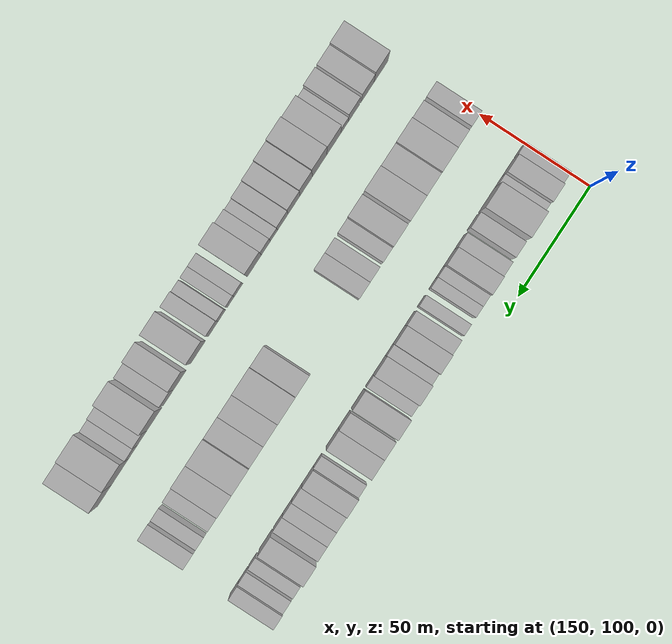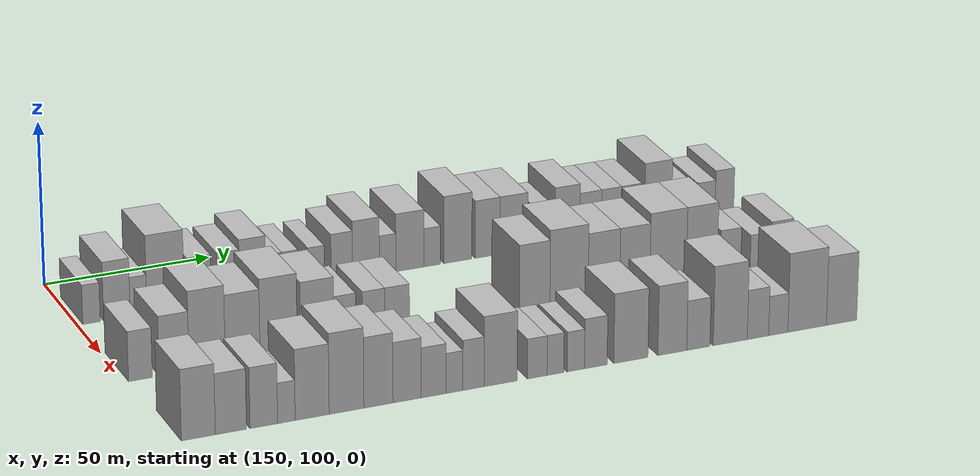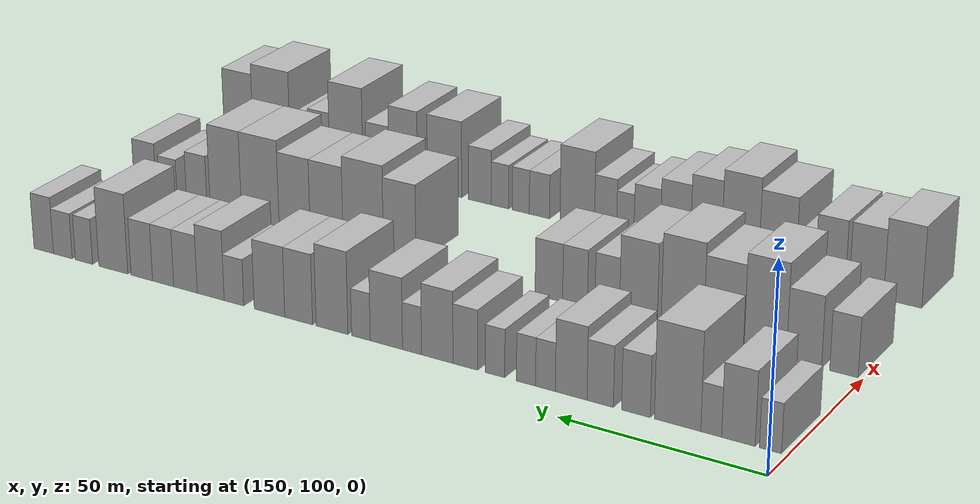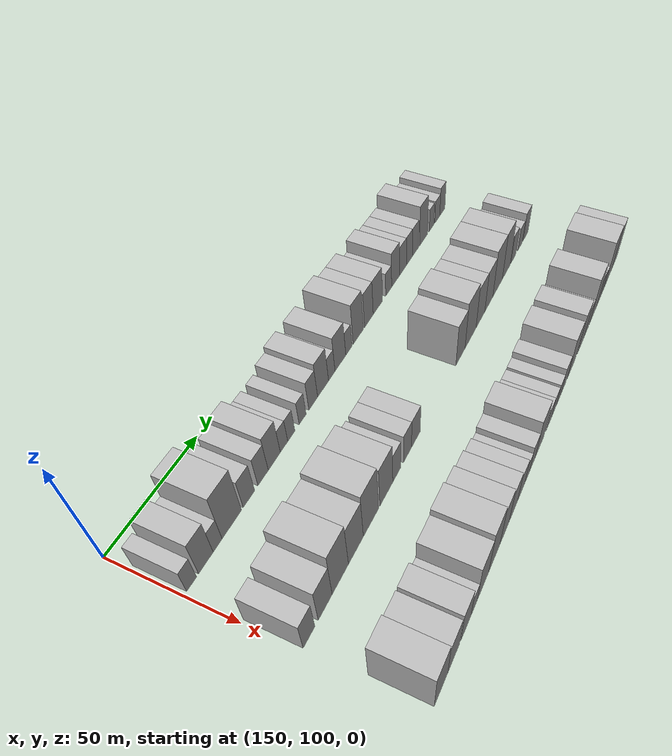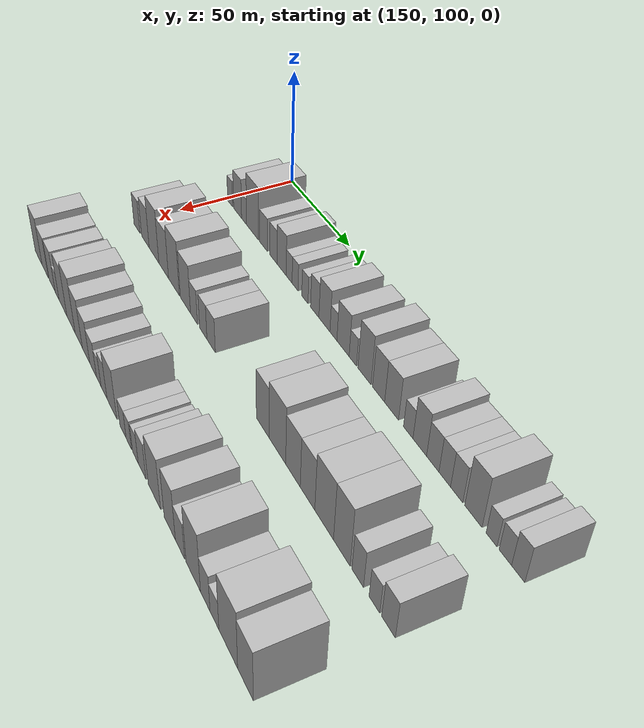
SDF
<sdf version="1.6">
 <world name="default">
  <model name="building_494">
   <static>1</static>
   <pose>170.0000 104.0990 0 0.000000 0.000000 0.000000</pose>
   <link name="link">
    <pose>0 0 6.00 0 0 0</pose>
    <collision name="collision"><geometry><box><size>20.0000 5.1390 12.0000</size></box></geometry></collision>
    <visual name="visual">
     <cast_shadows>0</cast_shadows>
     <geometry><box><size>20.0000 5.1390 12.0000</size></box></geometry>
     <material>
      <script>
       <uri>model://HANNAS_wall/materials/scripts</uri>
       <uri>model://HANNAS_wall/materials/textures</uri>
       <name>vrc/HANNAS_wall</name>
      </script>
     </material>
    </visual>
   </link>
  </model>
  <model name="building_495">
   <static>1</static>
   <pose>170.0000 111.6081 0 0.000000 0.000000 0.000000</pose>
   <link name="link">
    <pose>0 0 9.00 0 0 0</pose>
    <collision name="collision"><geometry><box><size>20.0000 7.8792 18.0000</size></box></geometry></collision>
    <visual name="visual">
     <cast_shadows>0</cast_shadows>
     <geometry><box><size>20.0000 7.8792 18.0000</size></box></geometry>
     <material>
      <script>
       <uri>model://HANNAS_wall/materials/scripts</uri>
       <uri>model://HANNAS_wall/materials/textures</uri>
       <name>vrc/HANNAS_wall</name>
      </script>
     </material>
    </visual>
   </link>
  </model>
  <model name="building_496">
   <static>1</static>
   <pose>170.0000 118.0154 0 0.000000 0.000000 0.000000</pose>
   <link name="link">
    <pose>0 0 6.00 0 0 0</pose>
    <collision name="collision"><geometry><box><size>20.0000 4.9354 12.0000</size></box></geometry></collision>
    <visual name="visual">
     <cast_shadows>0</cast_shadows>
     <geometry><box><size>20.0000 4.9354 12.0000</size></box></geometry>
     <material>
      <script>
       <uri>model://HANNAS_wall/materials/scripts</uri>
       <uri>model://HANNAS_wall/materials/textures</uri>
       <name>vrc/HANNAS_wall</name>
      </script>
     </material>
    </visual>
   </link>
  </model>
  <model name="building_497">
   <static>1</static>
   <pose>170.0000 126.0795 0 0.000000 0.000000 0.000000</pose>
   <link name="link">
    <pose>0 0 12.00 0 0 0</pose>
    <collision name="collision"><geometry><box><size>20.0000 11.1929 24.0000</size></box></geometry></collision>
    <visual name="visual">
     <cast_shadows>0</cast_shadows>
     <geometry><box><size>20.0000 11.1929 24.0000</size></box></geometry>
     <material>
      <script>
       <uri>model://HANNAS_wall/materials/scripts</uri>
       <uri>model://HANNAS_wall/materials/textures</uri>
       <name>vrc/HANNAS_wall</name>
      </script>
     </material>
    </visual>
   </link>
  </model>
  <model name="building_498">
   <static>1</static>
   <pose>170.0000 136.1879 0 0.000000 0.000000 0.000000</pose>
   <link name="link">
    <pose>0 0 7.50 0 0 0</pose>
    <collision name="collision"><geometry><box><size>20.0000 7.0238 15.0000</size></box></geometry></collision>
    <visual name="visual">
     <cast_shadows>0</cast_shadows>
     <geometry><box><size>20.0000 7.0238 15.0000</size></box></geometry>
     <material>
      <script>
       <uri>model://HANNAS_wall/materials/scripts</uri>
       <uri>model://HANNAS_wall/materials/textures</uri>
       <name>vrc/HANNAS_wall</name>
      </script>
     </material>
    </visual>
   </link>
  </model>
  <model name="building_499">
   <static>1</static>
   <pose>170.0000 144.9832 0 0.000000 0.000000 0.000000</pose>
   <link name="link">
    <pose>0 0 7.50 0 0 0</pose>
    <collision name="collision"><geometry><box><size>20.0000 6.5667 15.0000</size></box></geometry></collision>
    <visual name="visual">
     <cast_shadows>0</cast_shadows>
     <geometry><box><size>20.0000 6.5667 15.0000</size></box></geometry>
     <material>
      <script>
       <uri>model://HANNAS_wall/materials/scripts</uri>
       <uri>model://HANNAS_wall/materials/textures</uri>
       <name>vrc/HANNAS_wall</name>
      </script>
     </material>
    </visual>
   </link>
  </model>
  <model name="building_500">
   <static>1</static>
   <pose>170.0000 152.2312 0 0.000000 0.000000 0.000000</pose>
   <link name="link">
    <pose>0 0 9.00 0 0 0</pose>
    <collision name="collision"><geometry><box><size>20.0000 7.9293 18.0000</size></box></geometry></collision>
    <visual name="visual">
     <cast_shadows>0</cast_shadows>
     <geometry><box><size>20.0000 7.9293 18.0000</size></box></geometry>
     <material>
      <script>
       <uri>model://HANNAS_wall/materials/scripts</uri>
       <uri>model://HANNAS_wall/materials/textures</uri>
       <name>vrc/HANNAS_wall</name>
      </script>
     </material>
    </visual>
   </link>
  </model>
  <model name="building_501">
   <static>1</static>
   <pose>170.0000 158.6956 0 0.000000 0.000000 0.000000</pose>
   <link name="link">
    <pose>0 0 6.00 0 0 0</pose>
    <collision name="collision"><geometry><box><size>20.0000 4.9996 12.0000</size></box></geometry></collision>
    <visual name="visual">
     <cast_shadows>0</cast_shadows>
     <geometry><box><size>20.0000 4.9996 12.0000</size></box></geometry>
     <material>
      <script>
       <uri>model://HANNAS_wall/materials/scripts</uri>
       <uri>model://HANNAS_wall/materials/textures</uri>
       <name>vrc/HANNAS_wall</name>
      </script>
     </material>
    </visual>
   </link>
  </model>
  <model name="building_502">
   <static>1</static>
   <pose>170.0000 163.6506 0 0.000000 0.000000 0.000000</pose>
   <link name="link">
    <pose>0 0 6.00 0 0 0</pose>
    <collision name="collision"><geometry><box><size>20.0000 4.9103 12.0000</size></box></geometry></collision>
    <visual name="visual">
     <cast_shadows>0</cast_shadows>
     <geometry><box><size>20.0000 4.9103 12.0000</size></box></geometry>
     <material>
      <script>
       <uri>model://HANNAS_wall/materials/scripts</uri>
       <uri>model://HANNAS_wall/materials/textures</uri>
       <name>vrc/HANNAS_wall</name>
      </script>
     </material>
    </visual>
   </link>
  </model>
  <model name="building_503">
   <static>1</static>
   <pose>170.0000 171.6105 0 0.000000 0.000000 0.000000</pose>
   <link name="link">
    <pose>0 0 6.00 0 0 0</pose>
    <collision name="collision"><geometry><box><size>20.0000 5.0096 12.0000</size></box></geometry></collision>
    <visual name="visual">
     <cast_shadows>0</cast_shadows>
     <geometry><box><size>20.0000 5.0096 12.0000</size></box></geometry>
     <material>
      <script>
       <uri>model://HANNAS_wall/materials/scripts</uri>
       <uri>model://HANNAS_wall/materials/textures</uri>
       <name>vrc/HANNAS_wall</name>
      </script>
     </material>
    </visual>
   </link>
  </model>
  <model name="building_504">
   <static>1</static>
   <pose>170.0000 179.3670 0 0.000000 0.000000 0.000000</pose>
   <link name="link">
    <pose>0 0 7.50 0 0 0</pose>
    <collision name="collision"><geometry><box><size>20.0000 6.5034 15.0000</size></box></geometry></collision>
    <visual name="visual">
     <cast_shadows>0</cast_shadows>
     <geometry><box><size>20.0000 6.5034 15.0000</size></box></geometry>
     <material>
      <script>
       <uri>model://HANNAS_wall/materials/scripts</uri>
       <uri>model://HANNAS_wall/materials/textures</uri>
       <name>vrc/HANNAS_wall</name>
      </script>
     </material>
    </visual>
   </link>
  </model>
  <model name="building_505">
   <static>1</static>
   <pose>170.0000 186.7863 0 0.000000 0.000000 0.000000</pose>
   <link name="link">
    <pose>0 0 9.00 0 0 0</pose>
    <collision name="collision"><geometry><box><size>20.0000 8.3351 18.0000</size></box></geometry></collision>
    <visual name="visual">
     <cast_shadows>0</cast_shadows>
     <geometry><box><size>20.0000 8.3351 18.0000</size></box></geometry>
     <material>
      <script>
       <uri>model://HANNAS_wall/materials/scripts</uri>
       <uri>model://HANNAS_wall/materials/textures</uri>
       <name>vrc/HANNAS_wall</name>
      </script>
     </material>
    </visual>
   </link>
  </model>
  <model name="building_506">
   <static>1</static>
   <pose>170.0000 193.4971 0 0.000000 0.000000 0.000000</pose>
   <link name="link">
    <pose>0 0 6.00 0 0 0</pose>
    <collision name="collision"><geometry><box><size>20.0000 5.0865 12.0000</size></box></geometry></collision>
    <visual name="visual">
     <cast_shadows>0</cast_shadows>
     <geometry><box><size>20.0000 5.0865 12.0000</size></box></geometry>
     <material>
      <script>
       <uri>model://HANNAS_wall/materials/scripts</uri>
       <uri>model://HANNAS_wall/materials/textures</uri>
       <name>vrc/HANNAS_wall</name>
      </script>
     </material>
    </visual>
   </link>
  </model>
  <model name="building_507">
   <static>1</static>
   <pose>170.0000 200.4164 0 0.000000 0.000000 0.000000</pose>
   <link name="link">
    <pose>0 0 9.00 0 0 0</pose>
    <collision name="collision"><geometry><box><size>20.0000 8.7522 18.0000</size></box></geometry></collision>
    <visual name="visual">
     <cast_shadows>0</cast_shadows>
     <geometry><box><size>20.0000 8.7522 18.0000</size></box></geometry>
     <material>
      <script>
       <uri>model://HANNAS_wall/materials/scripts</uri>
       <uri>model://HANNAS_wall/materials/textures</uri>
       <name>vrc/HANNAS_wall</name>
      </script>
     </material>
    </visual>
   </link>
  </model>
  <model name="building_508">
   <static>1</static>
   <pose>170.0000 207.3411 0 0.000000 0.000000 0.000000</pose>
   <link name="link">
    <pose>0 0 6.00 0 0 0</pose>
    <collision name="collision"><geometry><box><size>20.0000 5.0971 12.0000</size></box></geometry></collision>
    <visual name="visual">
     <cast_shadows>0</cast_shadows>
     <geometry><box><size>20.0000 5.0971 12.0000</size></box></geometry>
     <material>
      <script>
       <uri>model://HANNAS_wall/materials/scripts</uri>
       <uri>model://HANNAS_wall/materials/textures</uri>
       <name>vrc/HANNAS_wall</name>
      </script>
     </material>
    </visual>
   </link>
  </model>
  <model name="building_509">
   <static>1</static>
   <pose>170.0000 215.2896 0 0.000000 0.000000 0.000000</pose>
   <link name="link">
    <pose>0 0 10.50 0 0 0</pose>
    <collision name="collision"><geometry><box><size>20.0000 8.8000 21.0000</size></box></geometry></collision>
    <visual name="visual">
     <cast_shadows>0</cast_shadows>
     <geometry><box><size>20.0000 8.8000 21.0000</size></box></geometry>
     <material>
      <script>
       <uri>model://HANNAS_wall/materials/scripts</uri>
       <uri>model://HANNAS_wall/materials/textures</uri>
       <name>vrc/HANNAS_wall</name>
      </script>
     </material>
    </visual>
   </link>
  </model>
  <model name="building_510">
   <static>1</static>
   <pose>170.0000 224.5983 0 0.000000 0.000000 0.000000</pose>
   <link name="link">
    <pose>0 0 9.00 0 0 0</pose>
    <collision name="collision"><geometry><box><size>20.0000 7.8174 18.0000</size></box></geometry></collision>
    <visual name="visual">
     <cast_shadows>0</cast_shadows>
     <geometry><box><size>20.0000 7.8174 18.0000</size></box></geometry>
     <material>
      <script>
       <uri>model://HANNAS_wall/materials/scripts</uri>
       <uri>model://HANNAS_wall/materials/textures</uri>
       <name>vrc/HANNAS_wall</name>
      </script>
     </material>
    </visual>
   </link>
  </model>
  <model name="building_511">
   <static>1</static>
   <pose>170.0000 232.8430 0 0.000000 0.000000 0.000000</pose>
   <link name="link">
    <pose>0 0 9.00 0 0 0</pose>
    <collision name="collision"><geometry><box><size>20.0000 8.6720 18.0000</size></box></geometry></collision>
    <visual name="visual">
     <cast_shadows>0</cast_shadows>
     <geometry><box><size>20.0000 8.6720 18.0000</size></box></geometry>
     <material>
      <script>
       <uri>model://HANNAS_wall/materials/scripts</uri>
       <uri>model://HANNAS_wall/materials/textures</uri>
       <name>vrc/HANNAS_wall</name>
      </script>
     </material>
    </visual>
   </link>
  </model>
  <model name="building_512">
   <static>1</static>
   <pose>170.0000 243.0170 0 0.000000 0.000000 0.000000</pose>
   <link name="link">
    <pose>0 0 6.00 0 0 0</pose>
    <collision name="collision"><geometry><box><size>20.0000 5.6761 12.0000</size></box></geometry></collision>
    <visual name="visual">
     <cast_shadows>0</cast_shadows>
     <geometry><box><size>20.0000 5.6761 12.0000</size></box></geometry>
     <material>
      <script>
       <uri>model://HANNAS_wall/materials/scripts</uri>
       <uri>model://HANNAS_wall/materials/textures</uri>
       <name>vrc/HANNAS_wall</name>
      </script>
     </material>
    </visual>
   </link>
  </model>
  <model name="building_513">
   <static>1</static>
   <pose>170.0000 249.7840 0 0.000000 0.000000 0.000000</pose>
   <link name="link">
    <pose>0 0 9.00 0 0 0</pose>
    <collision name="collision"><geometry><box><size>20.0000 7.8578 18.0000</size></box></geometry></collision>
    <visual name="visual">
     <cast_shadows>0</cast_shadows>
     <geometry><box><size>20.0000 7.8578 18.0000</size></box></geometry>
     <material>
      <script>
       <uri>model://HANNAS_wall/materials/scripts</uri>
       <uri>model://HANNAS_wall/materials/textures</uri>
       <name>vrc/HANNAS_wall</name>
      </script>
     </material>
    </visual>
   </link>
  </model>
  <model name="building_514">
   <static>1</static>
   <pose>170.0000 257.1737 0 0.000000 0.000000 0.000000</pose>
   <link name="link">
    <pose>0 0 7.50 0 0 0</pose>
    <collision name="collision"><geometry><box><size>20.0000 6.9216 15.0000</size></box></geometry></collision>
    <visual name="visual">
     <cast_shadows>0</cast_shadows>
     <geometry><box><size>20.0000 6.9216 15.0000</size></box></geometry>
     <material>
      <script>
       <uri>model://HANNAS_wall/materials/scripts</uri>
       <uri>model://HANNAS_wall/materials/textures</uri>
       <name>vrc/HANNAS_wall</name>
      </script>
     </material>
    </visual>
   </link>
  </model>
  <model name="building_515">
   <static>1</static>
   <pose>170.0000 263.7878 0 0.000000 0.000000 0.000000</pose>
   <link name="link">
    <pose>0 0 7.50 0 0 0</pose>
    <collision name="collision"><geometry><box><size>20.0000 6.3065 15.0000</size></box></geometry></collision>
    <visual name="visual">
     <cast_shadows>0</cast_shadows>
     <geometry><box><size>20.0000 6.3065 15.0000</size></box></geometry>
     <material>
      <script>
       <uri>model://HANNAS_wall/materials/scripts</uri>
       <uri>model://HANNAS_wall/materials/textures</uri>
       <name>vrc/HANNAS_wall</name>
      </script>
     </material>
    </visual>
   </link>
  </model>
  <model name="building_516">
   <static>1</static>
   <pose>170.0000 270.1688 0 0.000000 0.000000 0.000000</pose>
   <link name="link">
    <pose>0 0 7.50 0 0 0</pose>
    <collision name="collision"><geometry><box><size>20.0000 6.4557 15.0000</size></box></geometry></collision>
    <visual name="visual">
     <cast_shadows>0</cast_shadows>
     <geometry><box><size>20.0000 6.4557 15.0000</size></box></geometry>
     <material>
      <script>
       <uri>model://HANNAS_wall/materials/scripts</uri>
       <uri>model://HANNAS_wall/materials/textures</uri>
       <name>vrc/HANNAS_wall</name>
      </script>
     </material>
    </visual>
   </link>
  </model>
  <model name="building_517">
   <static>1</static>
   <pose>170.0000 278.7800 0 0.000000 0.000000 0.000000</pose>
   <link name="link">
    <pose>0 0 10.50 0 0 0</pose>
    <collision name="collision"><geometry><box><size>20.0000 8.7667 21.0000</size></box></geometry></collision>
    <visual name="visual">
     <cast_shadows>0</cast_shadows>
     <geometry><box><size>20.0000 8.7667 21.0000</size></box></geometry>
     <material>
      <script>
       <uri>model://HANNAS_wall/materials/scripts</uri>
       <uri>model://HANNAS_wall/materials/textures</uri>
       <name>vrc/HANNAS_wall</name>
      </script>
     </material>
    </visual>
   </link>
  </model>
  <model name="building_518">
   <static>1</static>
   <pose>170.0000 287.7923 0 0.000000 0.000000 0.000000</pose>
   <link name="link">
    <pose>0 0 6.00 0 0 0</pose>
    <collision name="collision"><geometry><box><size>20.0000 5.2580 12.0000</size></box></geometry></collision>
    <visual name="visual">
     <cast_shadows>0</cast_shadows>
     <geometry><box><size>20.0000 5.2580 12.0000</size></box></geometry>
     <material>
      <script>
       <uri>model://HANNAS_wall/materials/scripts</uri>
       <uri>model://HANNAS_wall/materials/textures</uri>
       <name>vrc/HANNAS_wall</name>
      </script>
     </material>
    </visual>
   </link>
  </model>
  <model name="building_519">
   <static>1</static>
   <pose>170.0000 294.3376 0 0.000000 0.000000 0.000000</pose>
   <link name="link">
    <pose>0 0 6.00 0 0 0</pose>
    <collision name="collision"><geometry><box><size>20.0000 5.8325 12.0000</size></box></geometry></collision>
    <visual name="visual">
     <cast_shadows>0</cast_shadows>
     <geometry><box><size>20.0000 5.8325 12.0000</size></box></geometry>
     <material>
      <script>
       <uri>model://HANNAS_wall/materials/scripts</uri>
       <uri>model://HANNAS_wall/materials/textures</uri>
       <name>vrc/HANNAS_wall</name>
      </script>
     </material>
    </visual>
   </link>
  </model>
  <model name="building_520">
   <static>1</static>
   <pose>170.0000 300.2866 0 0.000000 0.000000 0.000000</pose>
   <link name="link">
    <pose>0 0 7.50 0 0 0</pose>
    <collision name="collision"><geometry><box><size>20.0000 6.0655 15.0000</size></box></geometry></collision>
    <visual name="visual">
     <cast_shadows>0</cast_shadows>
     <geometry><box><size>20.0000 6.0655 15.0000</size></box></geometry>
     <material>
      <script>
       <uri>model://HANNAS_wall/materials/scripts</uri>
       <uri>model://HANNAS_wall/materials/textures</uri>
       <name>vrc/HANNAS_wall</name>
      </script>
     </material>
    </visual>
   </link>
  </model>
  <model name="building_634">
   <static>1</static>
   <pose>210.0000 104.7705 0 0.000000 0.000000 0.000000</pose>
   <link name="link">
    <pose>0 0 7.50 0 0 0</pose>
    <collision name="collision"><geometry><box><size>20.0000 6.8859 15.0000</size></box></geometry></collision>
    <visual name="visual">
     <cast_shadows>0</cast_shadows>
     <geometry><box><size>20.0000 6.8859 15.0000</size></box></geometry>
     <material>
      <script>
       <uri>model://HANNAS_wall/materials/scripts</uri>
       <uri>model://HANNAS_wall/materials/textures</uri>
       <name>vrc/HANNAS_wall</name>
      </script>
     </material>
    </visual>
   </link>
  </model>
  <model name="building_635">
   <static>1</static>
   <pose>210.0000 114.5216 0 0.000000 0.000000 0.000000</pose>
   <link name="link">
    <pose>0 0 9.00 0 0 0</pose>
    <collision name="collision"><geometry><box><size>20.0000 8.6162 18.0000</size></box></geometry></collision>
    <visual name="visual">
     <cast_shadows>0</cast_shadows>
     <geometry><box><size>20.0000 8.6162 18.0000</size></box></geometry>
     <material>
      <script>
       <uri>model://HANNAS_wall/materials/scripts</uri>
       <uri>model://HANNAS_wall/materials/textures</uri>
       <name>vrc/HANNAS_wall</name>
      </script>
     </material>
    </visual>
   </link>
  </model>
  <model name="building_636">
   <static>1</static>
   <pose>210.0000 124.1203 0 0.000000 0.000000 0.000000</pose>
   <link name="link">
    <pose>0 0 12.00 0 0 0</pose>
    <collision name="collision"><geometry><box><size>20.0000 10.5813 24.0000</size></box></geometry></collision>
    <visual name="visual">
     <cast_shadows>0</cast_shadows>
     <geometry><box><size>20.0000 10.5813 24.0000</size></box></geometry>
     <material>
      <script>
       <uri>model://HANNAS_wall/materials/scripts</uri>
       <uri>model://HANNAS_wall/materials/textures</uri>
       <name>vrc/HANNAS_wall</name>
      </script>
     </material>
    </visual>
   </link>
  </model>
  <model name="building_637">
   <static>1</static>
   <pose>210.0000 134.5207 0 0.000000 0.000000 0.000000</pose>
   <link name="link">
    <pose>0 0 10.50 0 0 0</pose>
    <collision name="collision"><geometry><box><size>20.0000 10.2195 21.0000</size></box></geometry></collision>
    <visual name="visual">
     <cast_shadows>0</cast_shadows>
     <geometry><box><size>20.0000 10.2195 21.0000</size></box></geometry>
     <material>
      <script>
       <uri>model://HANNAS_wall/materials/scripts</uri>
       <uri>model://HANNAS_wall/materials/textures</uri>
       <name>vrc/HANNAS_wall</name>
      </script>
     </material>
    </visual>
   </link>
  </model>
  <model name="building_638">
   <static>1</static>
   <pose>210.0000 145.1194 0 0.000000 0.000000 0.000000</pose>
   <link name="link">
    <pose>0 0 12.00 0 0 0</pose>
    <collision name="collision"><geometry><box><size>20.0000 10.9779 24.0000</size></box></geometry></collision>
    <visual name="visual">
     <cast_shadows>0</cast_shadows>
     <geometry><box><size>20.0000 10.9779 24.0000</size></box></geometry>
     <material>
      <script>
       <uri>model://HANNAS_wall/materials/scripts</uri>
       <uri>model://HANNAS_wall/materials/textures</uri>
       <name>vrc/HANNAS_wall</name>
      </script>
     </material>
    </visual>
   </link>
  </model>
  <model name="building_639">
   <static>1</static>
   <pose>210.0000 156.5364 0 0.000000 0.000000 0.000000</pose>
   <link name="link">
    <pose>0 0 10.50 0 0 0</pose>
    <collision name="collision"><geometry><box><size>20.0000 9.8561 21.0000</size></box></geometry></collision>
    <visual name="visual">
     <cast_shadows>0</cast_shadows>
     <geometry><box><size>20.0000 9.8561 21.0000</size></box></geometry>
     <material>
      <script>
       <uri>model://HANNAS_wall/materials/scripts</uri>
       <uri>model://HANNAS_wall/materials/textures</uri>
       <name>vrc/HANNAS_wall</name>
      </script>
     </material>
    </visual>
   </link>
  </model>
  <model name="building_640">
   <static>1</static>
   <pose>210.0000 164.7244 0 0.000000 0.000000 0.000000</pose>
   <link name="link">
    <pose>0 0 7.50 0 0 0</pose>
    <collision name="collision"><geometry><box><size>20.0000 6.5199 15.0000</size></box></geometry></collision>
    <visual name="visual">
     <cast_shadows>0</cast_shadows>
     <geometry><box><size>20.0000 6.5199 15.0000</size></box></geometry>
     <material>
      <script>
       <uri>model://HANNAS_wall/materials/scripts</uri>
       <uri>model://HANNAS_wall/materials/textures</uri>
       <name>vrc/HANNAS_wall</name>
      </script>
     </material>
    </visual>
   </link>
  </model>
  <model name="building_641">
   <static>1</static>
   <pose>210.0000 173.3217 0 0.000000 0.000000 0.000000</pose>
   <link name="link">
    <pose>0 0 7.50 0 0 0</pose>
    <collision name="collision"><geometry><box><size>20.0000 6.6747 15.0000</size></box></geometry></collision>
    <visual name="visual">
     <cast_shadows>0</cast_shadows>
     <geometry><box><size>20.0000 6.6747 15.0000</size></box></geometry>
     <material>
      <script>
       <uri>model://HANNAS_wall/materials/scripts</uri>
       <uri>model://HANNAS_wall/materials/textures</uri>
       <name>vrc/HANNAS_wall</name>
      </script>
     </material>
    </visual>
   </link>
  </model>
  <model name="building_642">
   <static>1</static>
   <pose>210.0000 180.3784 0 0.000000 0.000000 0.000000</pose>
   <link name="link">
    <pose>0 0 7.50 0 0 0</pose>
    <collision name="collision"><geometry><box><size>20.0000 7.4388 15.0000</size></box></geometry></collision>
    <visual name="visual">
     <cast_shadows>0</cast_shadows>
     <geometry><box><size>20.0000 7.4388 15.0000</size></box></geometry>
     <material>
      <script>
       <uri>model://HANNAS_wall/materials/scripts</uri>
       <uri>model://HANNAS_wall/materials/textures</uri>
       <name>vrc/HANNAS_wall</name>
      </script>
     </material>
    </visual>
   </link>
  </model>
  <model name="building_643">
   <static>1</static>
   <pose>210.0000 222.1428 0 0.000000 0.000000 0.000000</pose>
   <link name="link">
    <pose>0 0 10.50 0 0 0</pose>
    <collision name="collision"><geometry><box><size>20.0000 9.3633 21.0000</size></box></geometry></collision>
    <visual name="visual">
     <cast_shadows>0</cast_shadows>
     <geometry><box><size>20.0000 9.3633 21.0000</size></box></geometry>
     <material>
      <script>
       <uri>model://HANNAS_wall/materials/scripts</uri>
       <uri>model://HANNAS_wall/materials/textures</uri>
       <name>vrc/HANNAS_wall</name>
      </script>
     </material>
    </visual>
   </link>
  </model>
  <model name="building_644">
   <static>1</static>
   <pose>210.0000 232.7229 0 0.000000 0.000000 0.000000</pose>
   <link name="link">
    <pose>0 0 12.00 0 0 0</pose>
    <collision name="collision"><geometry><box><size>20.0000 11.7969 24.0000</size></box></geometry></collision>
    <visual name="visual">
     <cast_shadows>0</cast_shadows>
     <geometry><box><size>20.0000 11.7969 24.0000</size></box></geometry>
     <material>
      <script>
       <uri>model://HANNAS_wall/materials/scripts</uri>
       <uri>model://HANNAS_wall/materials/textures</uri>
       <name>vrc/HANNAS_wall</name>
      </script>
     </material>
    </visual>
   </link>
  </model>
  <model name="building_645">
   <static>1</static>
   <pose>210.0000 243.5176 0 0.000000 0.000000 0.000000</pose>
   <link name="link">
    <pose>0 0 10.50 0 0 0</pose>
    <collision name="collision"><geometry><box><size>20.0000 9.7926 21.0000</size></box></geometry></collision>
    <visual name="visual">
     <cast_shadows>0</cast_shadows>
     <geometry><box><size>20.0000 9.7926 21.0000</size></box></geometry>
     <material>
      <script>
       <uri>model://HANNAS_wall/materials/scripts</uri>
       <uri>model://HANNAS_wall/materials/textures</uri>
       <name>vrc/HANNAS_wall</name>
      </script>
     </material>
    </visual>
   </link>
  </model>
  <model name="building_646">
   <static>1</static>
   <pose>210.0000 253.1034 0 0.000000 0.000000 0.000000</pose>
   <link name="link">
    <pose>0 0 10.50 0 0 0</pose>
    <collision name="collision"><geometry><box><size>20.0000 9.3790 21.0000</size></box></geometry></collision>
    <visual name="visual">
     <cast_shadows>0</cast_shadows>
     <geometry><box><size>20.0000 9.3790 21.0000</size></box></geometry>
     <material>
      <script>
       <uri>model://HANNAS_wall/materials/scripts</uri>
       <uri>model://HANNAS_wall/materials/textures</uri>
       <name>vrc/HANNAS_wall</name>
      </script>
     </material>
    </visual>
   </link>
  </model>
  <model name="building_647">
   <static>1</static>
   <pose>210.0000 263.5219 0 0.000000 0.000000 0.000000</pose>
   <link name="link">
    <pose>0 0 12.00 0 0 0</pose>
    <collision name="collision"><geometry><box><size>20.0000 11.4580 24.0000</size></box></geometry></collision>
    <visual name="visual">
     <cast_shadows>0</cast_shadows>
     <geometry><box><size>20.0000 11.4580 24.0000</size></box></geometry>
     <material>
      <script>
       <uri>model://HANNAS_wall/materials/scripts</uri>
       <uri>model://HANNAS_wall/materials/textures</uri>
       <name>vrc/HANNAS_wall</name>
      </script>
     </material>
    </visual>
   </link>
  </model>
  <model name="building_648">
   <static>1</static>
   <pose>210.0000 274.1141 0 0.000000 0.000000 0.000000</pose>
   <link name="link">
    <pose>0 0 12.00 0 0 0</pose>
    <collision name="collision"><geometry><box><size>20.0000 9.7265 24.0000</size></box></geometry></collision>
    <visual name="visual">
     <cast_shadows>0</cast_shadows>
     <geometry><box><size>20.0000 9.7265 24.0000</size></box></geometry>
     <material>
      <script>
       <uri>model://HANNAS_wall/materials/scripts</uri>
       <uri>model://HANNAS_wall/materials/textures</uri>
       <name>vrc/HANNAS_wall</name>
      </script>
     </material>
    </visual>
   </link>
  </model>
  <model name="building_649">
   <static>1</static>
   <pose>210.0000 283.1912 0 0.000000 0.000000 0.000000</pose>
   <link name="link">
    <pose>0 0 7.50 0 0 0</pose>
    <collision name="collision"><geometry><box><size>20.0000 6.4276 15.0000</size></box></geometry></collision>
    <visual name="visual">
     <cast_shadows>0</cast_shadows>
     <geometry><box><size>20.0000 6.4276 15.0000</size></box></geometry>
     <material>
      <script>
       <uri>model://HANNAS_wall/materials/scripts</uri>
       <uri>model://HANNAS_wall/materials/textures</uri>
       <name>vrc/HANNAS_wall</name>
      </script>
     </material>
    </visual>
   </link>
  </model>
  <model name="building_650">
   <static>1</static>
   <pose>210.0000 292.2349 0 0.000000 0.000000 0.000000</pose>
   <link name="link">
    <pose>0 0 6.00 0 0 0</pose>
    <collision name="collision"><geometry><box><size>20.0000 5.6598 12.0000</size></box></geometry></collision>
    <visual name="visual">
     <cast_shadows>0</cast_shadows>
     <geometry><box><size>20.0000 5.6598 12.0000</size></box></geometry>
     <material>
      <script>
       <uri>model://HANNAS_wall/materials/scripts</uri>
       <uri>model://HANNAS_wall/materials/textures</uri>
       <name>vrc/HANNAS_wall</name>
      </script>
     </material>
    </visual>
   </link>
  </model>
  <model name="building_651">
   <static>1</static>
   <pose>210.0000 299.5613 0 0.000000 0.000000 0.000000</pose>
   <link name="link">
    <pose>0 0 7.50 0 0 0</pose>
    <collision name="collision"><geometry><box><size>20.0000 6.9930 15.0000</size></box></geometry></collision>
    <visual name="visual">
     <cast_shadows>0</cast_shadows>
     <geometry><box><size>20.0000 6.9930 15.0000</size></box></geometry>
     <material>
      <script>
       <uri>model://HANNAS_wall/materials/scripts</uri>
       <uri>model://HANNAS_wall/materials/textures</uri>
       <name>vrc/HANNAS_wall</name>
      </script>
     </material>
    </visual>
   </link>
  </model>
  <model name="building_769">
   <static>1</static>
   <pose>250.0000 107.2454 0 0.000000 0.000000 0.000000</pose>
   <link name="link">
    <pose>0 0 10.50 0 0 0</pose>
    <collision name="collision"><geometry><box><size>20.0000 9.6230 21.0000</size></box></geometry></collision>
    <visual name="visual">
     <cast_shadows>0</cast_shadows>
     <geometry><box><size>20.0000 9.6230 21.0000</size></box></geometry>
     <material>
      <script>
       <uri>model://HANNAS_wall/materials/scripts</uri>
       <uri>model://HANNAS_wall/materials/textures</uri>
       <name>vrc/HANNAS_wall</name>
      </script>
     </material>
    </visual>
   </link>
  </model>
  <model name="building_770">
   <static>1</static>
   <pose>250.0000 116.4830 0 0.000000 0.000000 0.000000</pose>
   <link name="link">
    <pose>0 0 9.00 0 0 0</pose>
    <collision name="collision"><geometry><box><size>20.0000 8.8522 18.0000</size></box></geometry></collision>
    <visual name="visual">
     <cast_shadows>0</cast_shadows>
     <geometry><box><size>20.0000 8.8522 18.0000</size></box></geometry>
     <material>
      <script>
       <uri>model://HANNAS_wall/materials/scripts</uri>
       <uri>model://HANNAS_wall/materials/textures</uri>
       <name>vrc/HANNAS_wall</name>
      </script>
     </material>
    </visual>
   </link>
  </model>
  <model name="building_771">
   <static>1</static>
   <pose>250.0000 125.8599 0 0.000000 0.000000 0.000000</pose>
   <link name="link">
    <pose>0 0 9.00 0 0 0</pose>
    <collision name="collision"><geometry><box><size>20.0000 7.9017 18.0000</size></box></geometry></collision>
    <visual name="visual">
     <cast_shadows>0</cast_shadows>
     <geometry><box><size>20.0000 7.9017 18.0000</size></box></geometry>
     <material>
      <script>
       <uri>model://HANNAS_wall/materials/scripts</uri>
       <uri>model://HANNAS_wall/materials/textures</uri>
       <name>vrc/HANNAS_wall</name>
      </script>
     </material>
    </visual>
   </link>
  </model>
  <model name="building_772">
   <static>1</static>
   <pose>250.0000 132.3192 0 0.000000 0.000000 0.000000</pose>
   <link name="link">
    <pose>0 0 6.00 0 0 0</pose>
    <collision name="collision"><geometry><box><size>20.0000 5.0169 12.0000</size></box></geometry></collision>
    <visual name="visual">
     <cast_shadows>0</cast_shadows>
     <geometry><box><size>20.0000 5.0169 12.0000</size></box></geometry>
     <material>
      <script>
       <uri>model://HANNAS_wall/materials/scripts</uri>
       <uri>model://HANNAS_wall/materials/textures</uri>
       <name>vrc/HANNAS_wall</name>
      </script>
     </material>
    </visual>
   </link>
  </model>
  <model name="building_773">
   <static>1</static>
   <pose>250.0000 139.7210 0 0.000000 0.000000 0.000000</pose>
   <link name="link">
    <pose>0 0 10.50 0 0 0</pose>
    <collision name="collision"><geometry><box><size>20.0000 9.7866 21.0000</size></box></geometry></collision>
    <visual name="visual">
     <cast_shadows>0</cast_shadows>
     <geometry><box><size>20.0000 9.7866 21.0000</size></box></geometry>
     <material>
      <script>
       <uri>model://HANNAS_wall/materials/scripts</uri>
       <uri>model://HANNAS_wall/materials/textures</uri>
       <name>vrc/HANNAS_wall</name>
      </script>
     </material>
    </visual>
   </link>
  </model>
  <model name="building_774">
   <static>1</static>
   <pose>250.0000 149.6319 0 0.000000 0.000000 0.000000</pose>
   <link name="link">
    <pose>0 0 12.00 0 0 0</pose>
    <collision name="collision"><geometry><box><size>20.0000 10.0353 24.0000</size></box></geometry></collision>
    <visual name="visual">
     <cast_shadows>0</cast_shadows>
     <geometry><box><size>20.0000 10.0353 24.0000</size></box></geometry>
     <material>
      <script>
       <uri>model://HANNAS_wall/materials/scripts</uri>
       <uri>model://HANNAS_wall/materials/textures</uri>
       <name>vrc/HANNAS_wall</name>
      </script>
     </material>
    </visual>
   </link>
  </model>
  <model name="building_775">
   <static>1</static>
   <pose>250.0000 158.8733 0 0.000000 0.000000 0.000000</pose>
   <link name="link">
    <pose>0 0 10.50 0 0 0</pose>
    <collision name="collision"><geometry><box><size>20.0000 8.4475 21.0000</size></box></geometry></collision>
    <visual name="visual">
     <cast_shadows>0</cast_shadows>
     <geometry><box><size>20.0000 8.4475 21.0000</size></box></geometry>
     <material>
      <script>
       <uri>model://HANNAS_wall/materials/scripts</uri>
       <uri>model://HANNAS_wall/materials/textures</uri>
       <name>vrc/HANNAS_wall</name>
      </script>
     </material>
    </visual>
   </link>
  </model>
  <model name="building_776">
   <static>1</static>
   <pose>250.0000 167.2449 0 0.000000 0.000000 0.000000</pose>
   <link name="link">
    <pose>0 0 9.00 0 0 0</pose>
    <collision name="collision"><geometry><box><size>20.0000 8.2957 18.0000</size></box></geometry></collision>
    <visual name="visual">
     <cast_shadows>0</cast_shadows>
     <geometry><box><size>20.0000 8.2957 18.0000</size></box></geometry>
     <material>
      <script>
       <uri>model://HANNAS_wall/materials/scripts</uri>
       <uri>model://HANNAS_wall/materials/textures</uri>
       <name>vrc/HANNAS_wall</name>
      </script>
     </material>
    </visual>
   </link>
  </model>
  <model name="building_777">
   <static>1</static>
   <pose>250.0000 175.0562 0 0.000000 0.000000 0.000000</pose>
   <link name="link">
    <pose>0 0 7.50 0 0 0</pose>
    <collision name="collision"><geometry><box><size>20.0000 7.3268 15.0000</size></box></geometry></collision>
    <visual name="visual">
     <cast_shadows>0</cast_shadows>
     <geometry><box><size>20.0000 7.3268 15.0000</size></box></geometry>
     <material>
      <script>
       <uri>model://HANNAS_wall/materials/scripts</uri>
       <uri>model://HANNAS_wall/materials/textures</uri>
       <name>vrc/HANNAS_wall</name>
      </script>
     </material>
    </visual>
   </link>
  </model>
  <model name="building_778">
   <static>1</static>
   <pose>250.0000 181.1562 0 0.000000 0.000000 0.000000</pose>
   <link name="link">
    <pose>0 0 6.00 0 0 0</pose>
    <collision name="collision"><geometry><box><size>20.0000 4.8734 12.0000</size></box></geometry></collision>
    <visual name="visual">
     <cast_shadows>0</cast_shadows>
     <geometry><box><size>20.0000 4.8734 12.0000</size></box></geometry>
     <material>
      <script>
       <uri>model://HANNAS_wall/materials/scripts</uri>
       <uri>model://HANNAS_wall/materials/textures</uri>
       <name>vrc/HANNAS_wall</name>
      </script>
     </material>
    </visual>
   </link>
  </model>
  <model name="building_779">
   <static>1</static>
   <pose>250.0000 186.7133 0 0.000000 0.000000 0.000000</pose>
   <link name="link">
    <pose>0 0 7.50 0 0 0</pose>
    <collision name="collision"><geometry><box><size>20.0000 6.2406 15.0000</size></box></geometry></collision>
    <visual name="visual">
     <cast_shadows>0</cast_shadows>
     <geometry><box><size>20.0000 6.2406 15.0000</size></box></geometry>
     <material>
      <script>
       <uri>model://HANNAS_wall/materials/scripts</uri>
       <uri>model://HANNAS_wall/materials/textures</uri>
       <name>vrc/HANNAS_wall</name>
      </script>
     </material>
    </visual>
   </link>
  </model>
  <model name="building_780">
   <static>1</static>
   <pose>250.0000 194.7605 0 0.000000 0.000000 0.000000</pose>
   <link name="link">
    <pose>0 0 10.50 0 0 0</pose>
    <collision name="collision"><geometry><box><size>20.0000 9.8540 21.0000</size></box></geometry></collision>
    <visual name="visual">
     <cast_shadows>0</cast_shadows>
     <geometry><box><size>20.0000 9.8540 21.0000</size></box></geometry>
     <material>
      <script>
       <uri>model://HANNAS_wall/materials/scripts</uri>
       <uri>model://HANNAS_wall/materials/textures</uri>
       <name>vrc/HANNAS_wall</name>
      </script>
     </material>
    </visual>
   </link>
  </model>
  <model name="building_781">
   <static>1</static>
   <pose>250.0000 205.6401 0 0.000000 0.000000 0.000000</pose>
   <link name="link">
    <pose>0 0 6.00 0 0 0</pose>
    <collision name="collision"><geometry><box><size>20.0000 5.9051 12.0000</size></box></geometry></collision>
    <visual name="visual">
     <cast_shadows>0</cast_shadows>
     <geometry><box><size>20.0000 5.9051 12.0000</size></box></geometry>
     <material>
      <script>
       <uri>model://HANNAS_wall/materials/scripts</uri>
       <uri>model://HANNAS_wall/materials/textures</uri>
       <name>vrc/HANNAS_wall</name>
      </script>
     </material>
    </visual>
   </link>
  </model>
  <model name="building_782">
   <static>1</static>
   <pose>250.0000 211.0945 0 0.000000 0.000000 0.000000</pose>
   <link name="link">
    <pose>0 0 6.00 0 0 0</pose>
    <collision name="collision"><geometry><box><size>20.0000 5.0036 12.0000</size></box></geometry></collision>
    <visual name="visual">
     <cast_shadows>0</cast_shadows>
     <geometry><box><size>20.0000 5.0036 12.0000</size></box></geometry>
     <material>
      <script>
       <uri>model://HANNAS_wall/materials/scripts</uri>
       <uri>model://HANNAS_wall/materials/textures</uri>
       <name>vrc/HANNAS_wall</name>
      </script>
     </material>
    </visual>
   </link>
  </model>
  <model name="building_783">
   <static>1</static>
   <pose>250.0000 217.1719 0 0.000000 0.000000 0.000000</pose>
   <link name="link">
    <pose>0 0 6.00 0 0 0</pose>
    <collision name="collision"><geometry><box><size>20.0000 5.1512 12.0000</size></box></geometry></collision>
    <visual name="visual">
     <cast_shadows>0</cast_shadows>
     <geometry><box><size>20.0000 5.1512 12.0000</size></box></geometry>
     <material>
      <script>
       <uri>model://HANNAS_wall/materials/scripts</uri>
       <uri>model://HANNAS_wall/materials/textures</uri>
       <name>vrc/HANNAS_wall</name>
      </script>
     </material>
    </visual>
   </link>
  </model>
  <model name="building_784">
   <static>1</static>
   <pose>250.0000 223.1719 0 0.000000 0.000000 0.000000</pose>
   <link name="link">
    <pose>0 0 7.50 0 0 0</pose>
    <collision name="collision"><geometry><box><size>20.0000 6.8489 15.0000</size></box></geometry></collision>
    <visual name="visual">
     <cast_shadows>0</cast_shadows>
     <geometry><box><size>20.0000 6.8489 15.0000</size></box></geometry>
     <material>
      <script>
       <uri>model://HANNAS_wall/materials/scripts</uri>
       <uri>model://HANNAS_wall/materials/textures</uri>
       <name>vrc/HANNAS_wall</name>
      </script>
     </material>
    </visual>
   </link>
  </model>
  <model name="building_785">
   <static>1</static>
   <pose>250.0000 233.7652 0 0.000000 0.000000 0.000000</pose>
   <link name="link">
    <pose>0 0 10.50 0 0 0</pose>
    <collision name="collision"><geometry><box><size>20.0000 10.3376 21.0000</size></box></geometry></collision>
    <visual name="visual">
     <cast_shadows>0</cast_shadows>
     <geometry><box><size>20.0000 10.3376 21.0000</size></box></geometry>
     <material>
      <script>
       <uri>model://HANNAS_wall/materials/scripts</uri>
       <uri>model://HANNAS_wall/materials/textures</uri>
       <name>vrc/HANNAS_wall</name>
      </script>
     </material>
    </visual>
   </link>
  </model>
  <model name="building_786">
   <static>1</static>
   <pose>250.0000 246.3388 0 0.000000 0.000000 0.000000</pose>
   <link name="link">
    <pose>0 0 10.50 0 0 0</pose>
    <collision name="collision"><geometry><box><size>20.0000 8.8097 21.0000</size></box></geometry></collision>
    <visual name="visual">
     <cast_shadows>0</cast_shadows>
     <geometry><box><size>20.0000 8.8097 21.0000</size></box></geometry>
     <material>
      <script>
       <uri>model://HANNAS_wall/materials/scripts</uri>
       <uri>model://HANNAS_wall/materials/textures</uri>
       <name>vrc/HANNAS_wall</name>
      </script>
     </material>
    </visual>
   </link>
  </model>
  <model name="building_787">
   <static>1</static>
   <pose>250.0000 254.2888 0 0.000000 0.000000 0.000000</pose>
   <link name="link">
    <pose>0 0 7.50 0 0 0</pose>
    <collision name="collision"><geometry><box><size>20.0000 7.0905 15.0000</size></box></geometry></collision>
    <visual name="visual">
     <cast_shadows>0</cast_shadows>
     <geometry><box><size>20.0000 7.0905 15.0000</size></box></geometry>
     <material>
      <script>
       <uri>model://HANNAS_wall/materials/scripts</uri>
       <uri>model://HANNAS_wall/materials/textures</uri>
       <name>vrc/HANNAS_wall</name>
      </script>
     </material>
    </visual>
   </link>
  </model>
  <model name="building_788">
   <static>1</static>
   <pose>250.0000 264.0654 0 0.000000 0.000000 0.000000</pose>
   <link name="link">
    <pose>0 0 12.00 0 0 0</pose>
    <collision name="collision"><geometry><box><size>20.0000 10.4627 24.0000</size></box></geometry></collision>
    <visual name="visual">
     <cast_shadows>0</cast_shadows>
     <geometry><box><size>20.0000 10.4627 24.0000</size></box></geometry>
     <material>
      <script>
       <uri>model://HANNAS_wall/materials/scripts</uri>
       <uri>model://HANNAS_wall/materials/textures</uri>
       <name>vrc/HANNAS_wall</name>
      </script>
     </material>
    </visual>
   </link>
  </model>
  <model name="building_789">
   <static>1</static>
   <pose>250.0000 272.6113 0 0.000000 0.000000 0.000000</pose>
   <link name="link">
    <pose>0 0 7.50 0 0 0</pose>
    <collision name="collision"><geometry><box><size>20.0000 6.6290 15.0000</size></box></geometry></collision>
    <visual name="visual">
     <cast_shadows>0</cast_shadows>
     <geometry><box><size>20.0000 6.6290 15.0000</size></box></geometry>
     <material>
      <script>
       <uri>model://HANNAS_wall/materials/scripts</uri>
       <uri>model://HANNAS_wall/materials/textures</uri>
       <name>vrc/HANNAS_wall</name>
      </script>
     </material>
    </visual>
   </link>
  </model>
  <model name="building_790">
   <static>1</static>
   <pose>250.0000 278.8987 0 0.000000 0.000000 0.000000</pose>
   <link name="link">
    <pose>0 0 6.00 0 0 0</pose>
    <collision name="collision"><geometry><box><size>20.0000 5.9458 12.0000</size></box></geometry></collision>
    <visual name="visual">
     <cast_shadows>0</cast_shadows>
     <geometry><box><size>20.0000 5.9458 12.0000</size></box></geometry>
     <material>
      <script>
       <uri>model://HANNAS_wall/materials/scripts</uri>
       <uri>model://HANNAS_wall/materials/textures</uri>
       <name>vrc/HANNAS_wall</name>
      </script>
     </material>
    </visual>
   </link>
  </model>
  <model name="building_791">
   <static>1</static>
   <pose>250.0000 287.8698 0 0.000000 0.000000 0.000000</pose>
   <link name="link">
    <pose>0 0 12.00 0 0 0</pose>
    <collision name="collision"><geometry><box><size>20.0000 11.9964 24.0000</size></box></geometry></collision>
    <visual name="visual">
     <cast_shadows>0</cast_shadows>
     <geometry><box><size>20.0000 11.9964 24.0000</size></box></geometry>
     <material>
      <script>
       <uri>model://HANNAS_wall/materials/scripts</uri>
       <uri>model://HANNAS_wall/materials/textures</uri>
       <name>vrc/HANNAS_wall</name>
      </script>
     </material>
    </visual>
   </link>
  </model>
  <model name="building_792">
   <static>1</static>
   <pose>250.0000 298.6079 0 0.000000 0.000000 0.000000</pose>
   <link name="link">
    <pose>0 0 10.50 0 0 0</pose>
    <collision name="collision"><geometry><box><size>20.0000 9.4798 21.0000</size></box></geometry></collision>
    <visual name="visual">
     <cast_shadows>0</cast_shadows>
     <geometry><box><size>20.0000 9.4798 21.0000</size></box></geometry>
     <material>
      <script>
       <uri>model://HANNAS_wall/materials/scripts</uri>
       <uri>model://HANNAS_wall/materials/textures</uri>
       <name>vrc/HANNAS_wall</name>
      </script>
     </material>
    </visual>
   </link>
  </model>
 </world>
</sdf>
